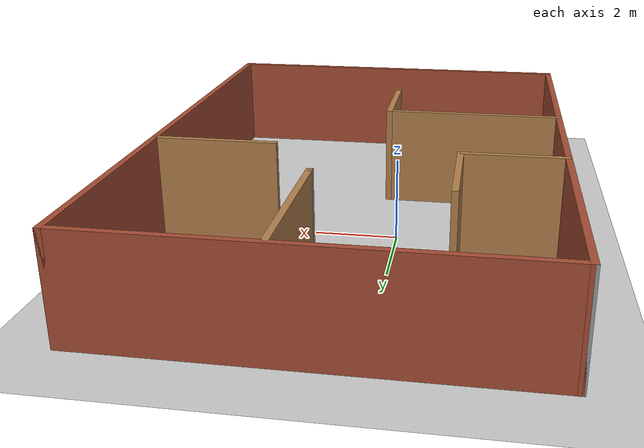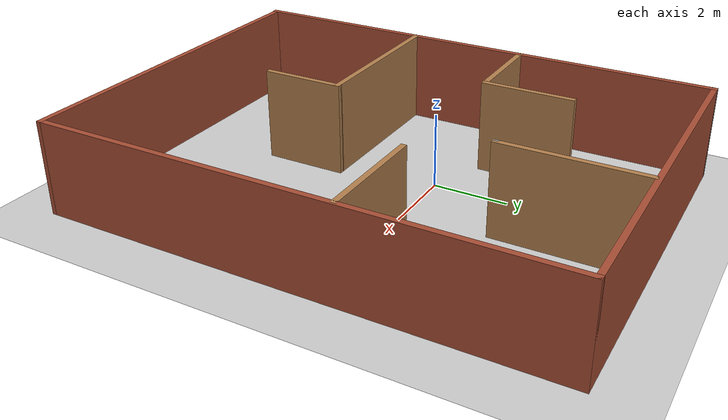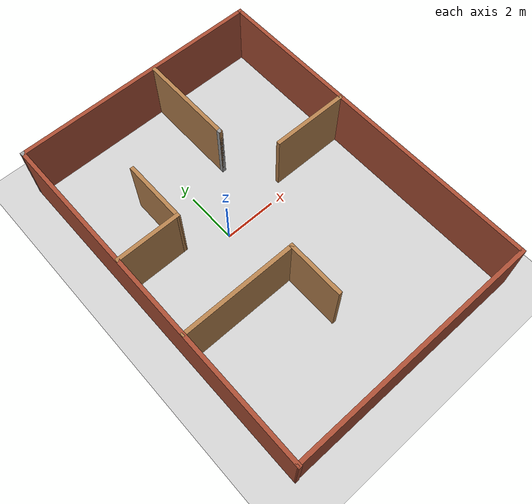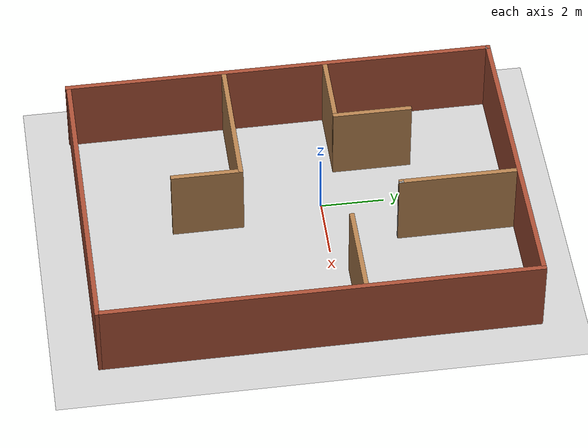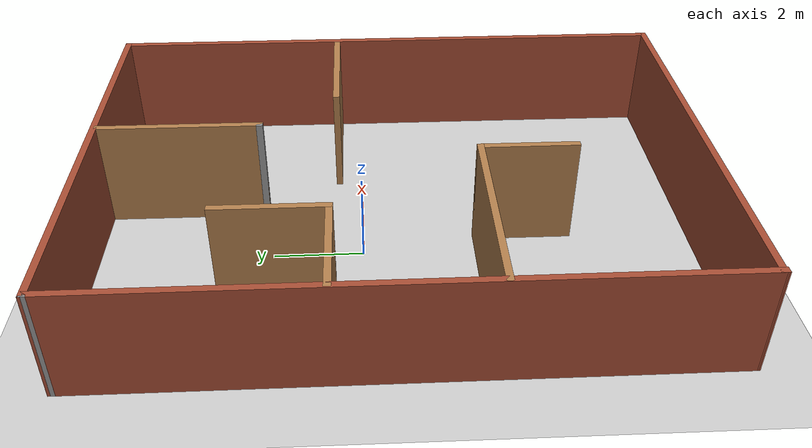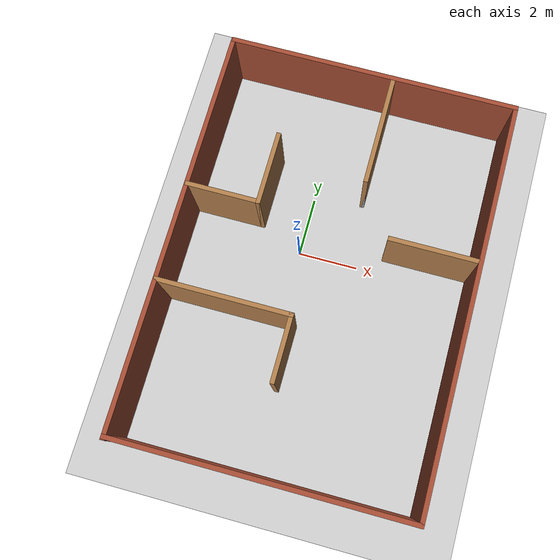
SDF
<sdf version="1.7">
 <world name="default">
  <light name="sun" type="directional">
   <pose>0 0 10 0 -0 0</pose>
   <diffuse>0.8 0.8 0.8 1</diffuse>
   <specular>0.2 0.2 0.2 1</specular>
   <attenuation>
    <range>1000</range>
    <constant>0.9</constant>
    <linear>0.01</linear>
    <quadratic>0.001</quadratic>
   </attenuation>
   <direction>-0.5 0.1 -0.9</direction>
   <spot><inner_angle>0</inner_angle><outer_angle>0</outer_angle><falloff>0</falloff></spot>
  </light>
  <model name="ground_plane">
   <static>1</static>
   <link name="link">
    <collision name="collision">
     <geometry><plane><normal>0 0 1</normal><size>100 100</size></plane></geometry>
     <surface><friction><ode><mu>100</mu><mu2>50</mu2></ode></friction></surface>
    </collision>
    <visual name="visual">
     <cast_shadows>0</cast_shadows>
     <geometry><plane><normal>0 0 1</normal><size>100 100</size></plane></geometry>
     <material>
      <script><uri>file://media/materials/scripts/gazebo.material</uri><name>Gazebo/Grey</name></script>
     </material>
    </visual>
   </link>
  </model>
  <gravity>0 0 -9.8</gravity>
  <magnetic_field>6e-06 2.3e-05 -4.2e-05</magnetic_field>
  <atmosphere type="adiabatic"/>
  <physics type="ode">
   <max_step_size>0.001</max_step_size>
   <real_time_factor>1</real_time_factor>
   <real_time_update_rate>1000</real_time_update_rate>
  </physics>
  <scene><ambient>0.4 0.4 0.4 1</ambient><background>0.7 0.7 0.7 1</background><shadows>1</shadows></scene>
  <audio><device>default</device></audio>
  <spherical_coordinates>
   <surface_model>EARTH_WGS84</surface_model>
   <latitude_deg>0</latitude_deg>
   <longitude_deg>0</longitude_deg>
   <elevation>0</elevation>
   <heading_deg>0</heading_deg>
  </spherical_coordinates>
  <model name="indoor_world">
   <pose>0.939226 -0.802825 0 0 -0 0</pose>
   <link name="Wall_10">
    <collision name="Wall_10_Collision">
     <geometry><box><size>0.15 0.15 2.5</size></box></geometry>
     <pose>0 0 1.25 0 -0 0</pose>
    </collision>
    <visual name="Wall_10_Visual">
     <pose>0 0 1.25 0 -0 0</pose>
     <geometry><box><size>0.15 0.15 2.5</size></box></geometry>
     <material>
      <script><uri>file://media/materials/scripts/gazebo.material</uri><name>Gazebo/Grey</name></script>
      <ambient>1 1 1 1</ambient>
     </material>
     <meta><layer>0</layer></meta>
    </visual>
    <pose>-4.81521 6.75036 0 0 -0 0</pose>
   </link>
   <link name="Wall_13">
    <collision name="Wall_13_Collision">
     <geometry><box><size>0.15 0.15 2.5</size></box></geometry>
     <pose>0 0 1.25 0 -0 0</pose>
    </collision>
    <visual name="Wall_13_Visual">
     <pose>0 0 1.25 0 -0 0</pose>
     <geometry><box><size>0.15 0.15 2.5</size></box></geometry>
     <material>
      <script><uri>file://media/materials/scripts/gazebo.material</uri><name>Gazebo/Grey</name></script>
      <ambient>1 1 1 1</ambient>
     </material>
     <meta><layer>0</layer></meta>
    </visual>
    <pose>0.697127 3.06461 0 0 -0 0</pose>
   </link>
   <link name="Wall_29">
    <collision name="Wall_29_Collision">
     <geometry><box><size>3.75 0.15 2.5</size></box></geometry>
     <pose>0 0 1.25 0 -0 0</pose>
    </collision>
    <visual name="Wall_29_Visual">
     <pose>0 0 1.25 0 -0 0</pose>
     <geometry><box><size>3.75 0.15 2.5</size></box></geometry>
     <material>
      <script><uri>file://media/materials/scripts/gazebo.material</uri><name>Gazebo/Wood</name></script>
      <ambient>1 1 1 1</ambient>
     </material>
     <meta><layer>0</layer></meta>
    </visual>
    <pose>0.697127 4.86461 0 0 -0 1.5708</pose>
   </link>
   <link name="Wall_31">
    <collision name="Wall_31_Collision">
     <geometry><box><size>3 0.15 2.5</size></box></geometry>
     <pose>0 0 1.25 0 -0 0</pose>
    </collision>
    <visual name="Wall_31_Visual">
     <pose>0 0 1.25 0 -0 0</pose>
     <geometry><box><size>3 0.15 2.5</size></box></geometry>
     <material>
      <script><uri>file://media/materials/scripts/gazebo.material</uri><name>Gazebo/Wood</name></script>
      <ambient>1 1 1 1</ambient>
     </material>
     <meta><layer>0</layer></meta>
    </visual>
    <pose>3.33502 1.3553 0 0 -0 0</pose>
   </link>
   <link name="Wall_33">
    <collision name="Wall_33_Collision">
     <geometry><box><size>4.5 0.15 2.5</size></box></geometry>
     <pose>0 0 1.25 0 -0 0</pose>
    </collision>
    <visual name="Wall_33_Visual">
     <pose>0 0 1.25 0 -0 0</pose>
     <geometry><box><size>4.5 0.15 2.5</size></box></geometry>
     <material>
      <script><uri>file://media/materials/scripts/gazebo.material</uri><name>Gazebo/Wood</name></script>
      <ambient>1 1 1 1</ambient>
     </material>
     <meta><layer>0</layer></meta>
    </visual>
    <pose>-2.602 -1.77867 0 0 -0 0</pose>
   </link>
   <link name="Wall_34">
    <collision name="Wall_34_Collision">
     <geometry><box><size>2.25 0.15 2.5</size></box></geometry>
     <pose>0 0 1.25 0 -0 0</pose>
    </collision>
    <visual name="Wall_34_Visual">
     <pose>0 0 1.25 0 -0 0</pose>
     <geometry><box><size>2.25 0.15 2.5</size></box></geometry>
     <material>
      <script><uri>file://media/materials/scripts/gazebo.material</uri><name>Gazebo/Wood</name></script>
      <ambient>1 1 1 1</ambient>
     </material>
     <meta><layer>0</layer></meta>
    </visual>
    <pose>-0.427001 -2.82867 0 0 -0 -1.5708</pose>
   </link>
   <link name="Wall_36">
    <collision name="Wall_36_Collision">
     <geometry><box><size>2.5 0.15 2.5</size></box></geometry>
     <pose>0 0 1.25 0 -0 0</pose>
    </collision>
    <visual name="Wall_36_Visual">
     <pose>0 0 1.25 0 -0 0</pose>
     <geometry><box><size>2.5 0.15 2.5</size></box></geometry>
     <material>
      <script><uri>file://media/materials/scripts/gazebo.material</uri><name>Gazebo/Wood</name></script>
      <ambient>1 1 1 1</ambient>
     </material>
     <meta><layer>0</layer></meta>
    </visual>
    <pose>-3.602 1.46389 0 0 -0 0</pose>
   </link>
   <link name="Wall_37">
    <collision name="Wall_37_Collision">
     <geometry><box><size>2.5 0.15 2.5</size></box></geometry>
     <pose>0 0 1.25 0 -0 0</pose>
    </collision>
    <visual name="Wall_37_Visual">
     <pose>0 0 1.25 0 -0 0</pose>
     <geometry><box><size>2.5 0.15 2.5</size></box></geometry>
     <material>
      <script><uri>file://media/materials/scripts/gazebo.material</uri><name>Gazebo/Wood</name></script>
      <ambient>1 1 1 1</ambient>
     </material>
     <meta><layer>0</layer></meta>
    </visual>
    <pose>-2.427 2.63889 0 0 -0 1.5708</pose>
   </link>
   <link name="Wall_39">
    <collision name="Wall_39_Collision">
     <geometry><box><size>13.5 0.15 2.5</size></box></geometry>
     <pose>0 0 1.25 0 -0 0</pose>
    </collision>
    <visual name="Wall_39_Visual">
     <pose>0 0 1.25 0 -0 0</pose>
     <geometry><box><size>13.5 0.15 2.5</size></box></geometry>
     <material>
      <script><uri>file://media/materials/scripts/gazebo.material</uri><name>Gazebo/Bricks</name></script>
      <ambient>1 1 1 1</ambient>
     </material>
     <meta><layer>0</layer></meta>
    </visual>
    <pose>4.81538 0.075359 0 0 -0 -1.5708</pose>
   </link>
   <link name="Wall_5">
    <collision name="Wall_5_Collision">
     <geometry><box><size>9.75 0.15 2.5</size></box></geometry>
     <pose>0 0 1.25 0 -0 0</pose>
    </collision>
    <visual name="Wall_5_Visual">
     <pose>0 0 1.25 0 -0 0</pose>
     <geometry><box><size>9.75 0.15 2.5</size></box></geometry>
     <material>
      <script><uri>file://media/materials/scripts/gazebo.material</uri><name>Gazebo/Bricks</name></script>
      <ambient>1 1 1 1</ambient>
     </material>
     <meta><layer>0</layer></meta>
    </visual>
    <pose>0.015379 6.75036 0 0 -0 0</pose>
   </link>
   <link name="Wall_7">
    <collision name="Wall_7_Collision">
     <geometry><box><size>9.75 0.15 2.5</size></box></geometry>
     <pose>0 0 1.25 0 -0 0</pose>
    </collision>
    <visual name="Wall_7_Visual">
     <pose>0 0 1.25 0 -0 0</pose>
     <geometry><box><size>9.75 0.15 2.5</size></box></geometry>
     <material>
      <script><uri>file://media/materials/scripts/gazebo.material</uri><name>Gazebo/Bricks</name></script>
      <ambient>1 1 1 1</ambient>
     </material>
     <meta><layer>0</layer></meta>
    </visual>
    <pose>0.015004 -6.71977 0 0 -0 3.14159</pose>
   </link>
   <link name="Wall_9">
    <collision name="Wall_9_Collision">
     <geometry><box><size>13.6508 0.15 2.5</size></box></geometry>
     <pose>0 0 1.25 0 -0 0</pose>
    </collision>
    <visual name="Wall_9_Visual">
     <pose>0 0 1.25 0 -0 0</pose>
     <geometry><box><size>13.6508 0.15 2.5</size></box></geometry>
     <material>
      <script><uri>file://media/materials/scripts/gazebo.material</uri><name>Gazebo/Bricks</name></script>
      <ambient>1 1 1 1</ambient>
     </material>
     <meta><layer>0</layer></meta>
    </visual>
    <pose>-4.8001 -0 0 0 -0 1.57303</pose>
   </link>
   <static>1</static>
  </model>
 </world>
</sdf>
